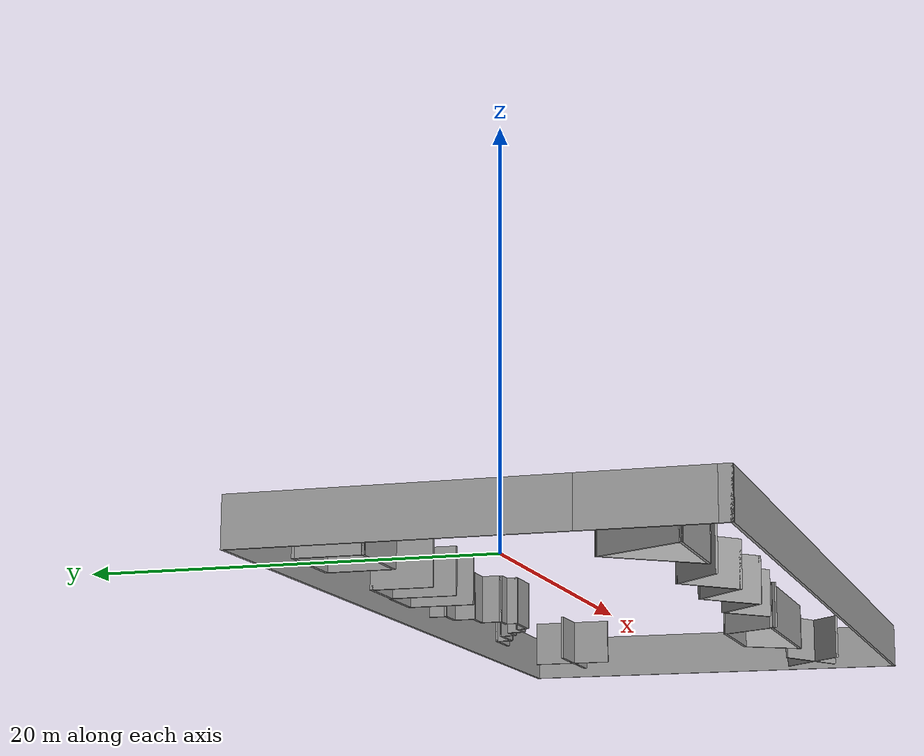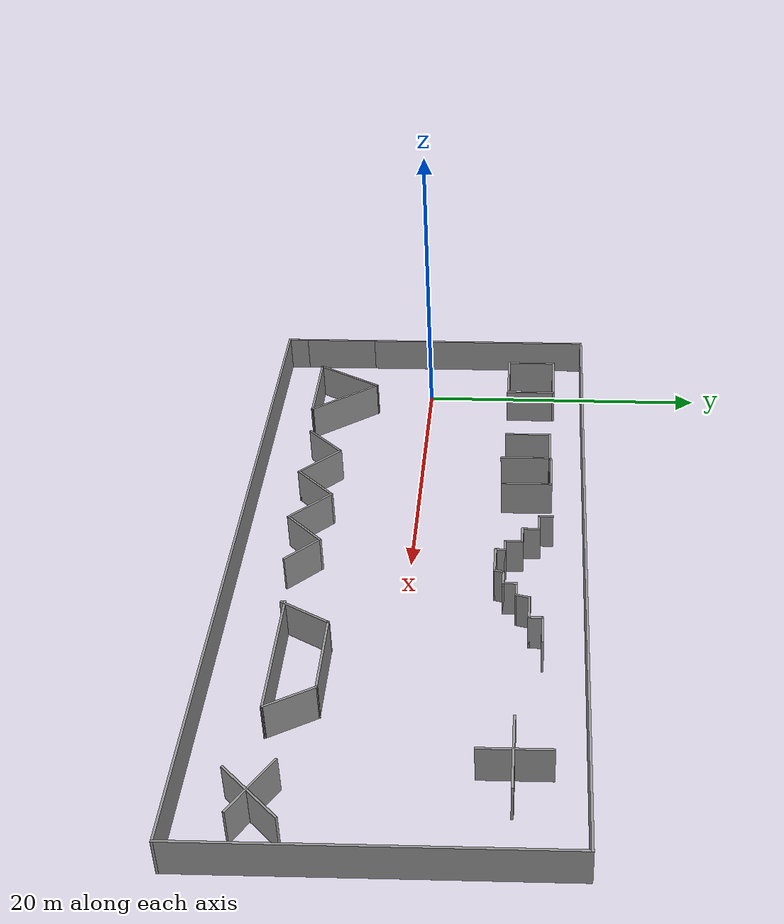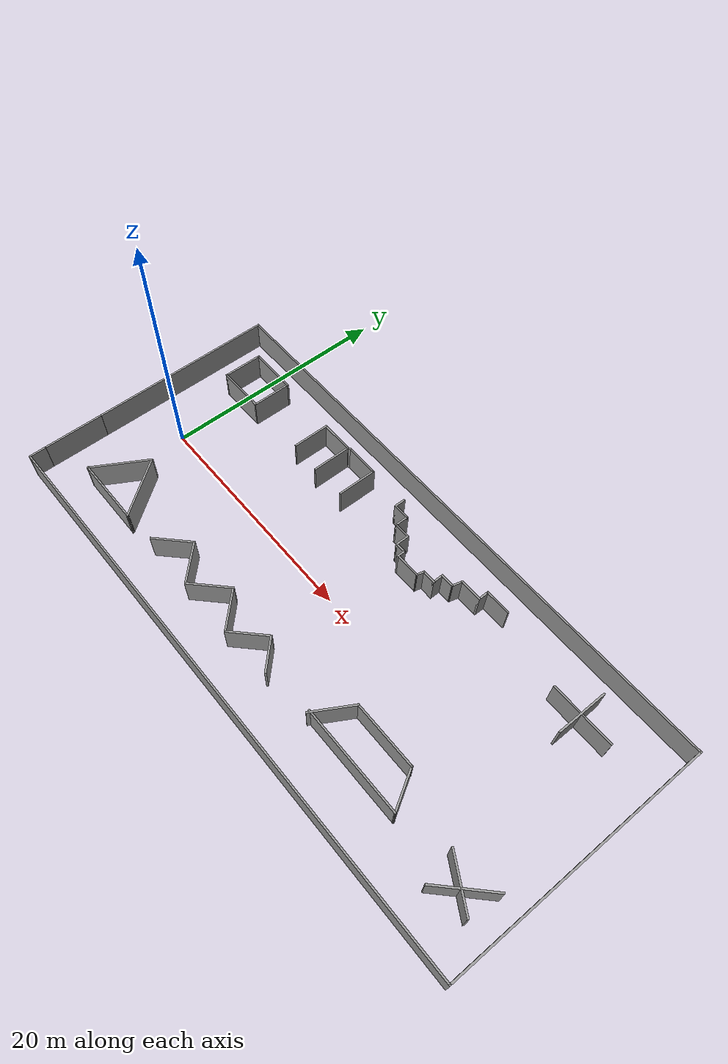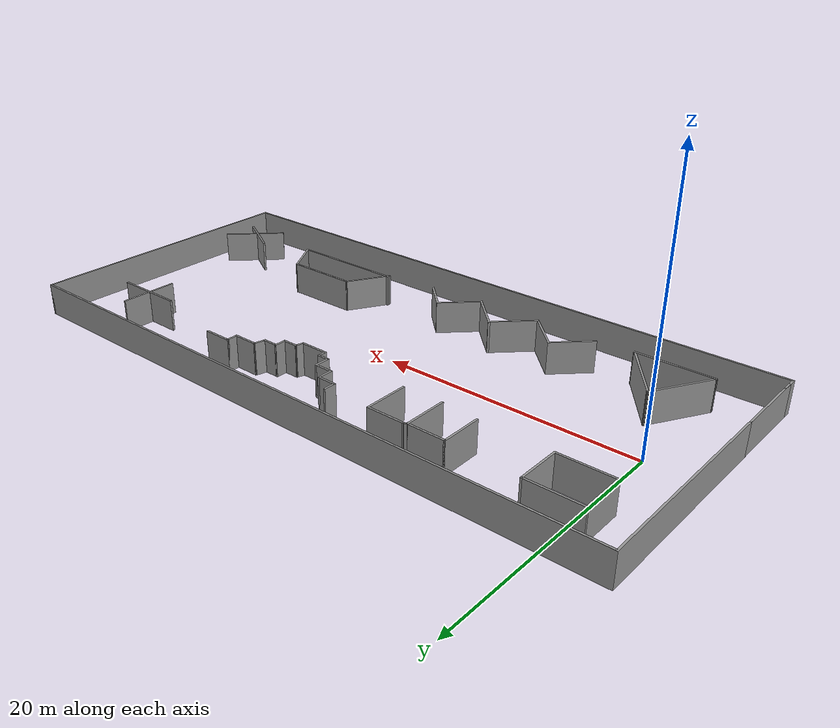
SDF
<?xml version='1.0'?>
<sdf version='1.7'>
  <model name='environment4'>
    <pose>20.6611 0.022563 0 0 -0 0</pose>
    <link name='Wall_0'>
      <collision name='Wall_0_Collision'>
        <geometry>
          <box>
            <size>16.25 0.15 2.5</size>
          </box>
        </geometry>
        <pose>0 0 1.25 0 -0 0</pose>
      </collision>
      <visual name='Wall_0_Visual'>
        <pose>0 0 1.25 0 -0 0</pose>
        <geometry>
          <box>
            <size>16.25 0.15 2.5</size>
          </box>
        </geometry>
        <material>
          <script>
            <uri>file://media/materials/scripts/gazebo.material</uri>
            <name>Gazebo/Grey</name>
          </script>
          <ambient>1 1 1 1</ambient>
        </material>
        <meta>
          <layer>0</layer>
        </meta>
      </visual>
      <pose>-25.05 3.375 0 0 -0 1.5708</pose>
    </link>
    <link name='Wall_10'>
      <collision name='Wall_10_Collision'>
        <geometry>
          <box>
            <size>4.25 0.15 2.5</size>
          </box>
        </geometry>
        <pose>0 0 1.25 0 -0 0</pose>
      </collision>
      <visual name='Wall_10_Visual'>
        <pose>0 0 1.25 0 -0 0</pose>
        <geometry>
          <box>
            <size>4.25 0.15 2.5</size>
          </box>
        </geometry>
        <material>
          <script>
            <uri>file://media/materials/scripts/gazebo.material</uri>
            <name>Gazebo/Grey</name>
          </script>
          <ambient>1 1 1 1</ambient>
        </material>
        <meta>
          <layer>0</layer>
        </meta>
      </visual>
      <pose>-20.0135 5.93107 0 0 -0 0</pose>
    </link>
    <link name='Wall_11'>
      <collision name='Wall_11_Collision'>
        <geometry>
          <box>
            <size>3.5 0.15 2.5</size>
          </box>
        </geometry>
        <pose>0 0 1.25 0 -0 0</pose>
      </collision>
      <visual name='Wall_11_Visual'>
        <pose>0 0 1.25 0 -0 0</pose>
        <geometry>
          <box>
            <size>3.5 0.15 2.5</size>
          </box>
        </geometry>
        <material>
          <script>
            <uri>file://media/materials/scripts/gazebo.material</uri>
            <name>Gazebo/Grey</name>
          </script>
          <ambient>1 1 1 1</ambient>
        </material>
        <meta>
          <layer>0</layer>
        </meta>
      </visual>
      <pose>-17.9635 7.60607 0 0 -0 1.5708</pose>
    </link>
    <link name='Wall_12'>
      <collision name='Wall_12_Collision'>
        <geometry>
          <box>
            <size>4.25 0.15 2.5</size>
          </box>
        </geometry>
        <pose>0 0 1.25 0 -0 0</pose>
      </collision>
      <visual name='Wall_12_Visual'>
        <pose>0 0 1.25 0 -0 0</pose>
        <geometry>
          <box>
            <size>4.25 0.15 2.5</size>
          </box>
        </geometry>
        <material>
          <script>
            <uri>file://media/materials/scripts/gazebo.material</uri>
            <name>Gazebo/Grey</name>
          </script>
          <ambient>1 1 1 1</ambient>
        </material>
        <meta>
          <layer>0</layer>
        </meta>
      </visual>
      <pose>-20.0135 9.28107 0 0 -0 3.14159</pose>
    </link>
    <link name='Wall_14'>
      <collision name='Wall_14_Collision'>
        <geometry>
          <box>
            <size>5.25 0.15 2.5</size>
          </box>
        </geometry>
        <pose>0 0 1.25 0 -0 0</pose>
      </collision>
      <visual name='Wall_14_Visual'>
        <pose>0 0 1.25 0 -0 0</pose>
        <geometry>
          <box>
            <size>5.25 0.15 2.5</size>
          </box>
        </geometry>
        <material>
          <script>
            <uri>file://media/materials/scripts/gazebo.material</uri>
            <name>Gazebo/Grey</name>
          </script>
          <ambient>1 1 1 1</ambient>
        </material>
        <meta>
          <layer>0</layer>
        </meta>
      </visual>
      <pose>-19.8929 -6.15579 0 0 -0 -2.0944</pose>
    </link>
    <link name='Wall_15'>
      <collision name='Wall_15_Collision'>
        <geometry>
          <box>
            <size>6 0.15 2.5</size>
          </box>
        </geometry>
        <pose>0 0 1.25 0 -0 0</pose>
      </collision>
      <visual name='Wall_15_Visual'>
        <pose>0 0 1.25 0 -0 0</pose>
        <geometry>
          <box>
            <size>6 0.15 2.5</size>
          </box>
        </geometry>
        <material>
          <script>
            <uri>file://media/materials/scripts/gazebo.material</uri>
            <name>Gazebo/Grey</name>
          </script>
          <ambient>1 1 1 1</ambient>
        </material>
        <meta>
          <layer>0</layer>
        </meta>
      </visual>
      <pose>-18.2429 -8.36415 0 0 -0 0</pose>
    </link>
    <link name='Wall_16'>
      <collision name='Wall_16_Collision'>
        <geometry>
          <box>
            <size>5.66339 0.15 2.5</size>
          </box>
        </geometry>
        <pose>0 0 1.25 0 -0 0</pose>
      </collision>
      <visual name='Wall_16_Visual'>
        <pose>0 0 1.25 0 -0 0</pose>
        <geometry>
          <box>
            <size>5.66339 0.15 2.5</size>
          </box>
        </geometry>
        <material>
          <script>
            <uri>file://media/materials/scripts/gazebo.material</uri>
            <name>Gazebo/Grey</name>
          </script>
          <ambient>1 1 1 1</ambient>
        </material>
        <meta>
          <layer>0</layer>
        </meta>
      </visual>
      <pose>-16.9679 -6.15579 0 0 -0 2.21248</pose>
    </link>
    <link name='Wall_18'>
      <collision name='Wall_18_Collision'>
        <geometry>
          <box>
            <size>3.25 0.15 2.5</size>
          </box>
        </geometry>
        <pose>0 0 1.25 0 -0 0</pose>
      </collision>
      <visual name='Wall_18_Visual'>
        <pose>0 0 1.25 0 -0 0</pose>
        <geometry>
          <box>
            <size>3.25 0.15 2.5</size>
          </box>
        </geometry>
        <material>
          <script>
            <uri>file://media/materials/scripts/gazebo.material</uri>
            <name>Gazebo/Grey</name>
          </script>
          <ambient>1 1 1 1</ambient>
        </material>
        <meta>
          <layer>0</layer>
        </meta>
      </visual>
      <pose>-12.4651 7.50856 0 0 -0 1.5708</pose>
    </link>
    <link name='Wall_19'>
      <collision name='Wall_19_Collision'>
        <geometry>
          <box>
            <size>3 0.15 2.5</size>
          </box>
        </geometry>
        <pose>0 0 1.25 0 -0 0</pose>
      </collision>
      <visual name='Wall_19_Visual'>
        <pose>0 0 1.25 0 -0 0</pose>
        <geometry>
          <box>
            <size>3 0.15 2.5</size>
          </box>
        </geometry>
        <material>
          <script>
            <uri>file://media/materials/scripts/gazebo.material</uri>
            <name>Gazebo/Grey</name>
          </script>
          <ambient>1 1 1 1</ambient>
        </material>
        <meta>
          <layer>0</layer>
        </meta>
      </visual>
      <pose>-11.0401 9.05856 0 0 -0 0</pose>
    </link>
    <link name='Wall_2'>
      <collision name='Wall_2_Collision'>
        <geometry>
          <box>
            <size>6.25 0.15 2.5</size>
          </box>
        </geometry>
        <pose>0 0 1.25 0 -0 0</pose>
      </collision>
      <visual name='Wall_2_Visual'>
        <pose>0 0 1.25 0 -0 0</pose>
        <geometry>
          <box>
            <size>6.25 0.15 2.5</size>
          </box>
        </geometry>
        <material>
          <script>
            <uri>file://media/materials/scripts/gazebo.material</uri>
            <name>Gazebo/Grey</name>
          </script>
          <ambient>1 1 1 1</ambient>
        </material>
        <meta>
          <layer>0</layer>
        </meta>
      </visual>
      <pose>-25.05 -7.725 0 0 -0 -1.5708</pose>
    </link>
    <link name='Wall_20'>
      <collision name='Wall_20_Collision'>
        <geometry>
          <box>
            <size>3.5 0.15 2.5</size>
          </box>
        </geometry>
        <pose>0 0 1.25 0 -0 0</pose>
      </collision>
      <visual name='Wall_20_Visual'>
        <pose>0 0 1.25 0 -0 0</pose>
        <geometry>
          <box>
            <size>3.5 0.15 2.5</size>
          </box>
        </geometry>
        <material>
          <script>
            <uri>file://media/materials/scripts/gazebo.material</uri>
            <name>Gazebo/Grey</name>
          </script>
          <ambient>1 1 1 1</ambient>
        </material>
        <meta>
          <layer>0</layer>
        </meta>
      </visual>
      <pose>-9.61515 7.38356 0 0 -0 -1.5708</pose>
    </link>
    <link name='Wall_22'>
      <collision name='Wall_22_Collision'>
        <geometry>
          <box>
            <size>3 0.15 2.5</size>
          </box>
        </geometry>
        <pose>0 0 1.25 0 -0 0</pose>
      </collision>
      <visual name='Wall_22_Visual'>
        <pose>0 0 1.25 0 -0 0</pose>
        <geometry>
          <box>
            <size>3 0.15 2.5</size>
          </box>
        </geometry>
        <material>
          <script>
            <uri>file://media/materials/scripts/gazebo.material</uri>
            <name>Gazebo/Grey</name>
          </script>
          <ambient>1 1 1 1</ambient>
        </material>
        <meta>
          <layer>0</layer>
        </meta>
      </visual>
      <pose>-7.96375 9.15802 0 0 -0 0</pose>
    </link>
    <link name='Wall_23'>
      <collision name='Wall_23_Collision'>
        <geometry>
          <box>
            <size>3.5 0.15 2.5</size>
          </box>
        </geometry>
        <pose>0 0 1.25 0 -0 0</pose>
      </collision>
      <visual name='Wall_23_Visual'>
        <pose>0 0 1.25 0 -0 0</pose>
        <geometry>
          <box>
            <size>3.5 0.15 2.5</size>
          </box>
        </geometry>
        <material>
          <script>
            <uri>file://media/materials/scripts/gazebo.material</uri>
            <name>Gazebo/Grey</name>
          </script>
          <ambient>1 1 1 1</ambient>
        </material>
        <meta>
          <layer>0</layer>
        </meta>
      </visual>
      <pose>-6.53875 7.48301 0 0 -0 -1.5708</pose>
    </link>
    <link name='Wall_25'>
      <collision name='Wall_25_Collision'>
        <geometry>
          <box>
            <size>0.397274 0.15 2.5</size>
          </box>
        </geometry>
        <pose>0 0 1.25 0 -0 0</pose>
      </collision>
      <visual name='Wall_25_Visual'>
        <pose>0 0 1.25 0 -0 0</pose>
        <geometry>
          <box>
            <size>0.397274 0.15 2.5</size>
          </box>
        </geometry>
        <material>
          <script>
            <uri>file://media/materials/scripts/gazebo.material</uri>
            <name>Gazebo/Grey</name>
          </script>
          <ambient>1 1 1 1</ambient>
        </material>
        <meta>
          <layer>0</layer>
        </meta>
      </visual>
      <pose>-9.50195 9.10829 0 0 -0 -2.72769</pose>
    </link>
    <link name='Wall_27'>
      <collision name='Wall_27_Collision'>
        <geometry>
          <box>
            <size>3.5 0.15 2.5</size>
          </box>
        </geometry>
        <pose>0 0 1.25 0 -0 0</pose>
      </collision>
      <visual name='Wall_27_Visual'>
        <pose>0 0 1.25 0 -0 0</pose>
        <geometry>
          <box>
            <size>3.5 0.15 2.5</size>
          </box>
        </geometry>
        <material>
          <script>
            <uri>file://media/materials/scripts/gazebo.material</uri>
            <name>Gazebo/Grey</name>
          </script>
          <ambient>1 1 1 1</ambient>
        </material>
        <meta>
          <layer>0</layer>
        </meta>
      </visual>
      <pose>-11.2559 -6.90119 0 0 -0 0.785398</pose>
    </link>
    <link name='Wall_28'>
      <collision name='Wall_28_Collision'>
        <geometry>
          <box>
            <size>3.75 0.15 2.5</size>
          </box>
        </geometry>
        <pose>0 0 1.25 0 -0 0</pose>
      </collision>
      <visual name='Wall_28_Visual'>
        <pose>0 0 1.25 0 -0 0</pose>
        <geometry>
          <box>
            <size>3.75 0.15 2.5</size>
          </box>
        </geometry>
        <material>
          <script>
            <uri>file://media/materials/scripts/gazebo.material</uri>
            <name>Gazebo/Grey</name>
          </script>
          <ambient>1 1 1 1</ambient>
        </material>
        <meta>
          <layer>0</layer>
        </meta>
      </visual>
      <pose>-8.79869 -6.98957 0 0 -0 -0.785398</pose>
    </link>
    <link name='Wall_29'>
      <collision name='Wall_29_Collision'>
        <geometry>
          <box>
            <size>3.75 0.15 2.5</size>
          </box>
        </geometry>
        <pose>0 0 1.25 0 -0 0</pose>
      </collision>
      <visual name='Wall_29_Visual'>
        <pose>0 0 1.25 0 -0 0</pose>
        <geometry>
          <box>
            <size>3.75 0.15 2.5</size>
          </box>
        </geometry>
        <material>
          <script>
            <uri>file://media/materials/scripts/gazebo.material</uri>
            <name>Gazebo/Grey</name>
          </script>
          <ambient>1 1 1 1</ambient>
        </material>
        <meta>
          <layer>0</layer>
        </meta>
      </visual>
      <pose>-6.2531 -6.98957 0 0 -0 0.785398</pose>
    </link>
    <link name='Wall_30'>
      <collision name='Wall_30_Collision'>
        <geometry>
          <box>
            <size>3.75 0.15 2.5</size>
          </box>
        </geometry>
        <pose>0 0 1.25 0 -0 0</pose>
      </collision>
      <visual name='Wall_30_Visual'>
        <pose>0 0 1.25 0 -0 0</pose>
        <geometry>
          <box>
            <size>3.75 0.15 2.5</size>
          </box>
        </geometry>
        <material>
          <script>
            <uri>file://media/materials/scripts/gazebo.material</uri>
            <name>Gazebo/Grey</name>
          </script>
          <ambient>1 1 1 1</ambient>
        </material>
        <meta>
          <layer>0</layer>
        </meta>
      </visual>
      <pose>-3.70752 -6.98957 0 0 -0 -0.785398</pose>
    </link>
    <link name='Wall_31'>
      <collision name='Wall_31_Collision'>
        <geometry>
          <box>
            <size>3.5 0.15 2.5</size>
          </box>
        </geometry>
        <pose>0 0 1.25 0 -0 0</pose>
      </collision>
      <visual name='Wall_31_Visual'>
        <pose>0 0 1.25 0 -0 0</pose>
        <geometry>
          <box>
            <size>3.5 0.15 2.5</size>
          </box>
        </geometry>
        <material>
          <script>
            <uri>file://media/materials/scripts/gazebo.material</uri>
            <name>Gazebo/Grey</name>
          </script>
          <ambient>1 1 1 1</ambient>
        </material>
        <meta>
          <layer>0</layer>
        </meta>
      </visual>
      <pose>-1.25032 -7.07796 0 0 -0 0.785398</pose>
    </link>
    <link name='Wall_32'>
      <collision name='Wall_32_Collision'>
        <geometry>
          <box>
            <size>3 0.15 2.5</size>
          </box>
        </geometry>
        <pose>0 0 1.25 0 -0 0</pose>
      </collision>
      <visual name='Wall_32_Visual'>
        <pose>0 0 1.25 0 -0 0</pose>
        <geometry>
          <box>
            <size>3 0.15 2.5</size>
          </box>
        </geometry>
        <material>
          <script>
            <uri>file://media/materials/scripts/gazebo.material</uri>
            <name>Gazebo/Grey</name>
          </script>
          <ambient>1 1 1 1</ambient>
        </material>
        <meta>
          <layer>0</layer>
        </meta>
      </visual>
      <pose>0.941709 -6.90119 0 0 -0 -0.785398</pose>
    </link>
    <link name='Wall_38'>
      <collision name='Wall_38_Collision'>
        <geometry>
          <box>
            <size>1 0.15 2.5</size>
          </box>
        </geometry>
        <pose>0 0 1.25 0 -0 0</pose>
      </collision>
      <visual name='Wall_38_Visual'>
        <pose>0 0 1.25 0 -0 0</pose>
        <geometry>
          <box>
            <size>1 0.15 2.5</size>
          </box>
        </geometry>
        <material>
          <script>
            <uri>file://media/materials/scripts/gazebo.material</uri>
            <name>Gazebo/Grey</name>
          </script>
          <ambient>1 1 1 1</ambient>
        </material>
        <meta>
          <layer>0</layer>
        </meta>
      </visual>
      <pose>-2.91867 8.8285 0 0 -0 -1.5708</pose>
    </link>
    <link name='Wall_39'>
      <collision name='Wall_39_Collision'>
        <geometry>
          <box>
            <size>1.5 0.15 2.5</size>
          </box>
        </geometry>
        <pose>0 0 1.25 0 -0 0</pose>
      </collision>
      <visual name='Wall_39_Visual'>
        <pose>0 0 1.25 0 -0 0</pose>
        <geometry>
          <box>
            <size>1.5 0.15 2.5</size>
          </box>
        </geometry>
        <material>
          <script>
            <uri>file://media/materials/scripts/gazebo.material</uri>
            <name>Gazebo/Grey</name>
          </script>
          <ambient>1 1 1 1</ambient>
        </material>
        <meta>
          <layer>0</layer>
        </meta>
      </visual>
      <pose>-2.24367 8.4035 0 0 -0 0</pose>
    </link>
    <link name='Wall_4'>
      <collision name='Wall_4_Collision'>
        <geometry>
          <box>
            <size>50.25 0.15 2.5</size>
          </box>
        </geometry>
        <pose>0 0 1.25 0 -0 0</pose>
      </collision>
      <visual name='Wall_4_Visual'>
        <pose>0 0 1.25 0 -0 0</pose>
        <geometry>
          <box>
            <size>50.25 0.15 2.5</size>
          </box>
        </geometry>
        <material>
          <script>
            <uri>file://media/materials/scripts/gazebo.material</uri>
            <name>Gazebo/Grey</name>
          </script>
          <ambient>1 1 1 1</ambient>
        </material>
        <meta>
          <layer>0</layer>
        </meta>
      </visual>
      <pose>-0 11.425 0 0 -0 0</pose>
    </link>
    <link name='Wall_40'>
      <collision name='Wall_40_Collision'>
        <geometry>
          <box>
            <size>1.25 0.15 2.5</size>
          </box>
        </geometry>
        <pose>0 0 1.25 0 -0 0</pose>
      </collision>
      <visual name='Wall_40_Visual'>
        <pose>0 0 1.25 0 -0 0</pose>
        <geometry>
          <box>
            <size>1.25 0.15 2.5</size>
          </box>
        </geometry>
        <material>
          <script>
            <uri>file://media/materials/scripts/gazebo.material</uri>
            <name>Gazebo/Grey</name>
          </script>
          <ambient>1 1 1 1</ambient>
        </material>
        <meta>
          <layer>0</layer>
        </meta>
      </visual>
      <pose>-1.56867 7.8535 0 0 -0 -1.5708</pose>
    </link>
    <link name='Wall_41'>
      <collision name='Wall_41_Collision'>
        <geometry>
          <box>
            <size>1.5 0.15 2.5</size>
          </box>
        </geometry>
        <pose>0 0 1.25 0 -0 0</pose>
      </collision>
      <visual name='Wall_41_Visual'>
        <pose>0 0 1.25 0 -0 0</pose>
        <geometry>
          <box>
            <size>1.5 0.15 2.5</size>
          </box>
        </geometry>
        <material>
          <script>
            <uri>file://media/materials/scripts/gazebo.material</uri>
            <name>Gazebo/Grey</name>
          </script>
          <ambient>1 1 1 1</ambient>
        </material>
        <meta>
          <layer>0</layer>
        </meta>
      </visual>
      <pose>-0.89367 7.3035 0 0 -0 0</pose>
    </link>
    <link name='Wall_42'>
      <collision name='Wall_42_Collision'>
        <geometry>
          <box>
            <size>1.25 0.15 2.5</size>
          </box>
        </geometry>
        <pose>0 0 1.25 0 -0 0</pose>
      </collision>
      <visual name='Wall_42_Visual'>
        <pose>0 0 1.25 0 -0 0</pose>
        <geometry>
          <box>
            <size>1.25 0.15 2.5</size>
          </box>
        </geometry>
        <material>
          <script>
            <uri>file://media/materials/scripts/gazebo.material</uri>
            <name>Gazebo/Grey</name>
          </script>
          <ambient>1 1 1 1</ambient>
        </material>
        <meta>
          <layer>0</layer>
        </meta>
      </visual>
      <pose>-0.218668 6.7535 0 0 -0 -1.5708</pose>
    </link>
    <link name='Wall_45'>
      <collision name='Wall_45_Collision'>
        <geometry>
          <box>
            <size>1 0.15 2.5</size>
          </box>
        </geometry>
        <pose>0 0 1.25 0 -0 0</pose>
      </collision>
      <visual name='Wall_45_Visual'>
        <pose>0 0 1.25 0 -0 0</pose>
        <geometry>
          <box>
            <size>1 0.15 2.5</size>
          </box>
        </geometry>
        <material>
          <script>
            <uri>file://media/materials/scripts/gazebo.material</uri>
            <name>Gazebo/Grey</name>
          </script>
          <ambient>1 1 1 1</ambient>
        </material>
        <meta>
          <layer>0</layer>
        </meta>
      </visual>
      <pose>0.206331 6.2035 0 0 -0 0</pose>
    </link>
    <link name='Wall_46'>
      <collision name='Wall_46_Collision'>
        <geometry>
          <box>
            <size>0.75 0.15 2.5</size>
          </box>
        </geometry>
        <pose>0 0 1.25 0 -0 0</pose>
      </collision>
      <visual name='Wall_46_Visual'>
        <pose>0 0 1.25 0 -0 0</pose>
        <geometry>
          <box>
            <size>0.75 0.15 2.5</size>
          </box>
        </geometry>
        <material>
          <script>
            <uri>file://media/materials/scripts/gazebo.material</uri>
            <name>Gazebo/Grey</name>
          </script>
          <ambient>1 1 1 1</ambient>
        </material>
        <meta>
          <layer>0</layer>
        </meta>
      </visual>
      <pose>0.63133 5.9035 0 0 -0 -1.5708</pose>
    </link>
    <link name='Wall_47'>
      <collision name='Wall_47_Collision'>
        <geometry>
          <box>
            <size>2.25 0.15 2.5</size>
          </box>
        </geometry>
        <pose>0 0 1.25 0 -0 0</pose>
      </collision>
      <visual name='Wall_47_Visual'>
        <pose>0 0 1.25 0 -0 0</pose>
        <geometry>
          <box>
            <size>2.25 0.15 2.5</size>
          </box>
        </geometry>
        <material>
          <script>
            <uri>file://media/materials/scripts/gazebo.material</uri>
            <name>Gazebo/Grey</name>
          </script>
          <ambient>1 1 1 1</ambient>
        </material>
        <meta>
          <layer>0</layer>
        </meta>
      </visual>
      <pose>1.68133 5.6035 0 0 -0 0</pose>
    </link>
    <link name='Wall_48'>
      <collision name='Wall_48_Collision'>
        <geometry>
          <box>
            <size>0.75 0.15 2.5</size>
          </box>
        </geometry>
        <pose>0 0 1.25 0 -0 0</pose>
      </collision>
      <visual name='Wall_48_Visual'>
        <pose>0 0 1.25 0 -0 0</pose>
        <geometry>
          <box>
            <size>0.75 0.15 2.5</size>
          </box>
        </geometry>
        <material>
          <script>
            <uri>file://media/materials/scripts/gazebo.material</uri>
            <name>Gazebo/Grey</name>
          </script>
          <ambient>1 1 1 1</ambient>
        </material>
        <meta>
          <layer>0</layer>
        </meta>
      </visual>
      <pose>2.80898 5.89328 0 0 -0 1.309</pose>
    </link>
    <link name='Wall_49'>
      <collision name='Wall_49_Collision'>
        <geometry>
          <box>
            <size>1.25 0.15 2.5</size>
          </box>
        </geometry>
        <pose>0 0 1.25 0 -0 0</pose>
      </collision>
      <visual name='Wall_49_Visual'>
        <pose>0 0 1.25 0 -0 0</pose>
        <geometry>
          <box>
            <size>1.25 0.15 2.5</size>
          </box>
        </geometry>
        <material>
          <script>
            <uri>file://media/materials/scripts/gazebo.material</uri>
            <name>Gazebo/Grey</name>
          </script>
          <ambient>1 1 1 1</ambient>
        </material>
        <meta>
          <layer>0</layer>
        </meta>
      </visual>
      <pose>3.43662 6.18305 0 0 -0 0</pose>
    </link>
    <link name='Wall_5'>
      <collision name='Wall_5_Collision'>
        <geometry>
          <box>
            <size>23 0.15 2.5</size>
          </box>
        </geometry>
        <pose>0 0 1.25 0 -0 0</pose>
      </collision>
      <visual name='Wall_5_Visual'>
        <pose>0 0 1.25 0 -0 0</pose>
        <geometry>
          <box>
            <size>23 0.15 2.5</size>
          </box>
        </geometry>
        <material>
          <script>
            <uri>file://media/materials/scripts/gazebo.material</uri>
            <name>Gazebo/Grey</name>
          </script>
          <ambient>1 1 1 1</ambient>
        </material>
        <meta>
          <layer>0</layer>
        </meta>
      </visual>
      <pose>25.05 -0 0 0 -0 -1.5708</pose>
    </link>
    <link name='Wall_50'>
      <collision name='Wall_50_Collision'>
        <geometry>
          <box>
            <size>1 0.15 2.5</size>
          </box>
        </geometry>
        <pose>0 0 1.25 0 -0 0</pose>
      </collision>
      <visual name='Wall_50_Visual'>
        <pose>0 0 1.25 0 -0 0</pose>
        <geometry>
          <box>
            <size>1 0.15 2.5</size>
          </box>
        </geometry>
        <material>
          <script>
            <uri>file://media/materials/scripts/gazebo.material</uri>
            <name>Gazebo/Grey</name>
          </script>
          <ambient>1 1 1 1</ambient>
        </material>
        <meta>
          <layer>0</layer>
        </meta>
      </visual>
      <pose>3.98662 6.60805 0 0 -0 1.5708</pose>
    </link>
    <link name='Wall_51'>
      <collision name='Wall_51_Collision'>
        <geometry>
          <box>
            <size>1.25 0.15 2.5</size>
          </box>
        </geometry>
        <pose>0 0 1.25 0 -0 0</pose>
      </collision>
      <visual name='Wall_51_Visual'>
        <pose>0 0 1.25 0 -0 0</pose>
        <geometry>
          <box>
            <size>1.25 0.15 2.5</size>
          </box>
        </geometry>
        <material>
          <script>
            <uri>file://media/materials/scripts/gazebo.material</uri>
            <name>Gazebo/Grey</name>
          </script>
          <ambient>1 1 1 1</ambient>
        </material>
        <meta>
          <layer>0</layer>
        </meta>
      </visual>
      <pose>4.53662 7.03305 0 0 -0 0</pose>
    </link>
    <link name='Wall_52'>
      <collision name='Wall_52_Collision'>
        <geometry>
          <box>
            <size>1 0.15 2.5</size>
          </box>
        </geometry>
        <pose>0 0 1.25 0 -0 0</pose>
      </collision>
      <visual name='Wall_52_Visual'>
        <pose>0 0 1.25 0 -0 0</pose>
        <geometry>
          <box>
            <size>1 0.15 2.5</size>
          </box>
        </geometry>
        <material>
          <script>
            <uri>file://media/materials/scripts/gazebo.material</uri>
            <name>Gazebo/Grey</name>
          </script>
          <ambient>1 1 1 1</ambient>
        </material>
        <meta>
          <layer>0</layer>
        </meta>
      </visual>
      <pose>5.19662 7.44357 0 0 -0 1.309</pose>
    </link>
    <link name='Wall_53'>
      <collision name='Wall_53_Collision'>
        <geometry>
          <box>
            <size>2 0.15 2.5</size>
          </box>
        </geometry>
        <pose>0 0 1.25 0 -0 0</pose>
      </collision>
      <visual name='Wall_53_Visual'>
        <pose>0 0 1.25 0 -0 0</pose>
        <geometry>
          <box>
            <size>2 0.15 2.5</size>
          </box>
        </geometry>
        <material>
          <script>
            <uri>file://media/materials/scripts/gazebo.material</uri>
            <name>Gazebo/Grey</name>
          </script>
          <ambient>1 1 1 1</ambient>
        </material>
        <meta>
          <layer>0</layer>
        </meta>
      </visual>
      <pose>6.23162 7.85409 0 0 -0 0</pose>
    </link>
    <link name='Wall_54'>
      <collision name='Wall_54_Collision'>
        <geometry>
          <box>
            <size>1 0.15 2.5</size>
          </box>
        </geometry>
        <pose>0 0 1.25 0 -0 0</pose>
      </collision>
      <visual name='Wall_54_Visual'>
        <pose>0 0 1.25 0 -0 0</pose>
        <geometry>
          <box>
            <size>1 0.15 2.5</size>
          </box>
        </geometry>
        <material>
          <script>
            <uri>file://media/materials/scripts/gazebo.material</uri>
            <name>Gazebo/Grey</name>
          </script>
          <ambient>1 1 1 1</ambient>
        </material>
        <meta>
          <layer>0</layer>
        </meta>
      </visual>
      <pose>7.15662 8.27909 0 0 -0 1.5708</pose>
    </link>
    <link name='Wall_55'>
      <collision name='Wall_55_Collision'>
        <geometry>
          <box>
            <size>2.25 0.15 2.5</size>
          </box>
        </geometry>
        <pose>0 0 1.25 0 -0 0</pose>
      </collision>
      <visual name='Wall_55_Visual'>
        <pose>0 0 1.25 0 -0 0</pose>
        <geometry>
          <box>
            <size>2.25 0.15 2.5</size>
          </box>
        </geometry>
        <material>
          <script>
            <uri>file://media/materials/scripts/gazebo.material</uri>
            <name>Gazebo/Grey</name>
          </script>
          <ambient>1 1 1 1</ambient>
        </material>
        <meta>
          <layer>0</layer>
        </meta>
      </visual>
      <pose>8.20662 8.70409 0 0 -0 0</pose>
    </link>
    <link name='Wall_57'>
      <collision name='Wall_57_Collision'>
        <geometry>
          <box>
            <size>9.25 0.15 2.5</size>
          </box>
        </geometry>
        <pose>0 0 1.25 0 -0 0</pose>
      </collision>
      <visual name='Wall_57_Visual'>
        <pose>0 0 1.25 0 -0 0</pose>
        <geometry>
          <box>
            <size>9.25 0.15 2.5</size>
          </box>
        </geometry>
        <material>
          <script>
            <uri>file://media/materials/scripts/gazebo.material</uri>
            <name>Gazebo/Grey</name>
          </script>
          <ambient>1 1 1 1</ambient>
        </material>
        <meta>
          <layer>0</layer>
        </meta>
      </visual>
      <pose>10.6648 -7.26613 0 0 -0 0</pose>
    </link>
    <link name='Wall_58'>
      <collision name='Wall_58_Collision'>
        <geometry>
          <box>
            <size>3.5 0.15 2.5</size>
          </box>
        </geometry>
        <pose>0 0 1.25 0 -0 0</pose>
      </collision>
      <visual name='Wall_58_Visual'>
        <pose>0 0 1.25 0 -0 0</pose>
        <geometry>
          <box>
            <size>3.5 0.15 2.5</size>
          </box>
        </geometry>
        <material>
          <script>
            <uri>file://media/materials/scripts/gazebo.material</uri>
            <name>Gazebo/Grey</name>
          </script>
          <ambient>1 1 1 1</ambient>
        </material>
        <meta>
          <layer>0</layer>
        </meta>
      </visual>
      <pose>14.3773 -5.81554 0 0 -0 2.0944</pose>
    </link>
    <link name='Wall_59'>
      <collision name='Wall_59_Collision'>
        <geometry>
          <box>
            <size>5.75 0.15 2.5</size>
          </box>
        </geometry>
        <pose>0 0 1.25 0 -0 0</pose>
      </collision>
      <visual name='Wall_59_Visual'>
        <pose>0 0 1.25 0 -0 0</pose>
        <geometry>
          <box>
            <size>5.75 0.15 2.5</size>
          </box>
        </geometry>
        <material>
          <script>
            <uri>file://media/materials/scripts/gazebo.material</uri>
            <name>Gazebo/Grey</name>
          </script>
          <ambient>1 1 1 1</ambient>
        </material>
        <meta>
          <layer>0</layer>
        </meta>
      </visual>
      <pose>10.7398 -4.36495 0 0 -0 3.14159</pose>
    </link>
    <link name='Wall_6'>
      <collision name='Wall_6_Collision'>
        <geometry>
          <box>
            <size>50.25 0.15 2.5</size>
          </box>
        </geometry>
        <pose>0 0 1.25 0 -0 0</pose>
      </collision>
      <visual name='Wall_6_Visual'>
        <pose>0 0 1.25 0 -0 0</pose>
        <geometry>
          <box>
            <size>50.25 0.15 2.5</size>
          </box>
        </geometry>
        <material>
          <script>
            <uri>file://media/materials/scripts/gazebo.material</uri>
            <name>Gazebo/Grey</name>
          </script>
          <ambient>1 1 1 1</ambient>
        </material>
        <meta>
          <layer>0</layer>
        </meta>
      </visual>
      <pose>-0 -11.425 0 0 -0 3.14159</pose>
    </link>
    <link name='Wall_60'>
      <collision name='Wall_60_Collision'>
        <geometry>
          <box>
            <size>3.75 0.15 2.5</size>
          </box>
        </geometry>
        <pose>0 0 1.25 0 -0 0</pose>
      </collision>
      <visual name='Wall_60_Visual'>
        <pose>0 0 1.25 0 -0 0</pose>
        <geometry>
          <box>
            <size>3.75 0.15 2.5</size>
          </box>
        </geometry>
        <material>
          <script>
            <uri>file://media/materials/scripts/gazebo.material</uri>
            <name>Gazebo/Grey</name>
          </script>
          <ambient>1 1 1 1</ambient>
        </material>
        <meta>
          <layer>0</layer>
        </meta>
      </visual>
      <pose>7.03978 -5.9238 0 0 -0 -2.0944</pose>
    </link>
    <link name='Wall_62'>
      <collision name='Wall_62_Collision'>
        <geometry>
          <box>
            <size>4.5 0.15 2.5</size>
          </box>
        </geometry>
        <pose>0 0 1.25 0 -0 0</pose>
      </collision>
      <visual name='Wall_62_Visual'>
        <pose>0 0 1.25 0 -0 0</pose>
        <geometry>
          <box>
            <size>4.5 0.15 2.5</size>
          </box>
        </geometry>
        <material>
          <script>
            <uri>file://media/materials/scripts/gazebo.material</uri>
            <name>Gazebo/Grey</name>
          </script>
          <ambient>1 1 1 1</ambient>
        </material>
        <meta>
          <layer>0</layer>
        </meta>
      </visual>
      <pose>18.0727 7.25753 0 0 -0 -1.5708</pose>
    </link>
    <link name='Wall_64'>
      <collision name='Wall_64_Collision'>
        <geometry>
          <box>
            <size>5.5 0.15 2.5</size>
          </box>
        </geometry>
        <pose>0 0 1.25 0 -0 0</pose>
      </collision>
      <visual name='Wall_64_Visual'>
        <pose>0 0 1.25 0 -0 0</pose>
        <geometry>
          <box>
            <size>5.5 0.15 2.5</size>
          </box>
        </geometry>
        <material>
          <script>
            <uri>file://media/materials/scripts/gazebo.material</uri>
            <name>Gazebo/Grey</name>
          </script>
          <ambient>1 1 1 1</ambient>
        </material>
        <meta>
          <layer>0</layer>
        </meta>
      </visual>
      <pose>18.2005 7.16831 0 0 -0 0</pose>
    </link>
    <link name='Wall_66'>
      <collision name='Wall_66_Collision'>
        <geometry>
          <box>
            <size>4.5 0.15 2.5</size>
          </box>
        </geometry>
        <pose>0 0 1.25 0 -0 0</pose>
      </collision>
      <visual name='Wall_66_Visual'>
        <pose>0 0 1.25 0 -0 0</pose>
        <geometry>
          <box>
            <size>4.5 0.15 2.5</size>
          </box>
        </geometry>
        <material>
          <script>
            <uri>file://media/materials/scripts/gazebo.material</uri>
            <name>Gazebo/Grey</name>
          </script>
          <ambient>1 1 1 1</ambient>
        </material>
        <meta>
          <layer>0</layer>
        </meta>
      </visual>
      <pose>21.0884 -6.93849 0 0 -0 -0.523599</pose>
    </link>
    <link name='Wall_68'>
      <collision name='Wall_68_Collision'>
        <geometry>
          <box>
            <size>5 0.15 2.5</size>
          </box>
        </geometry>
        <pose>0 0 1.25 0 -0 0</pose>
      </collision>
      <visual name='Wall_68_Visual'>
        <pose>0 0 1.25 0 -0 0</pose>
        <geometry>
          <box>
            <size>5 0.15 2.5</size>
          </box>
        </geometry>
        <material>
          <script>
            <uri>file://media/materials/scripts/gazebo.material</uri>
            <name>Gazebo/Grey</name>
          </script>
          <ambient>1 1 1 1</ambient>
        </material>
        <meta>
          <layer>0</layer>
        </meta>
      </visual>
      <pose>21.5564 -6.96654 0 0 -0 0.785398</pose>
    </link>
    <link name='Wall_7'>
      <collision name='Wall_7_Collision'>
        <geometry>
          <box>
            <size>1.5 0.15 2.5</size>
          </box>
        </geometry>
        <pose>0 0 1.25 0 -0 0</pose>
      </collision>
      <visual name='Wall_7_Visual'>
        <pose>0 0 1.25 0 -0 0</pose>
        <geometry>
          <box>
            <size>1.5 0.15 2.5</size>
          </box>
        </geometry>
        <material>
          <script>
            <uri>file://media/materials/scripts/gazebo.material</uri>
            <name>Gazebo/Grey</name>
          </script>
          <ambient>1 1 1 1</ambient>
        </material>
        <meta>
          <layer>0</layer>
        </meta>
      </visual>
      <pose>-25.05 -10.75 0 0 -0 1.5708</pose>
    </link>
    <link name='Wall_9'>
      <collision name='Wall_9_Collision'>
        <geometry>
          <box>
            <size>3.5 0.15 2.5</size>
          </box>
        </geometry>
        <pose>0 0 1.25 0 -0 0</pose>
      </collision>
      <visual name='Wall_9_Visual'>
        <pose>0 0 1.25 0 -0 0</pose>
        <geometry>
          <box>
            <size>3.5 0.15 2.5</size>
          </box>
        </geometry>
        <material>
          <script>
            <uri>file://media/materials/scripts/gazebo.material</uri>
            <name>Gazebo/Grey</name>
          </script>
          <ambient>1 1 1 1</ambient>
        </material>
        <meta>
          <layer>0</layer>
        </meta>
      </visual>
      <pose>-22.0635 7.60607 0 0 -0 -1.5708</pose>
    </link>
    <static>1</static>
  </model>
</sdf>
